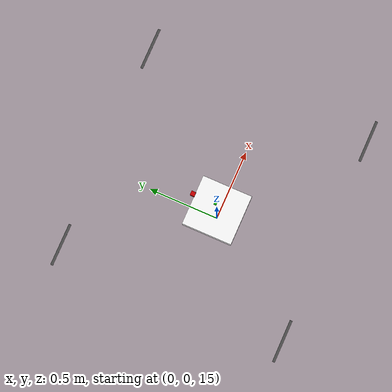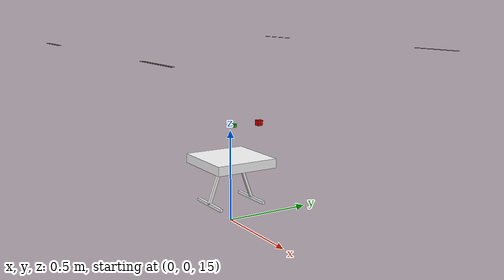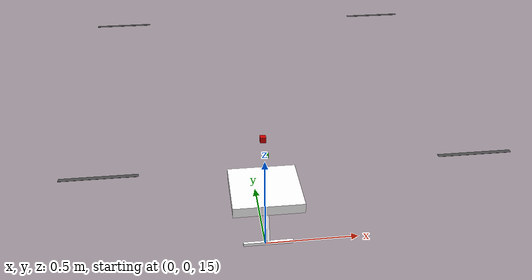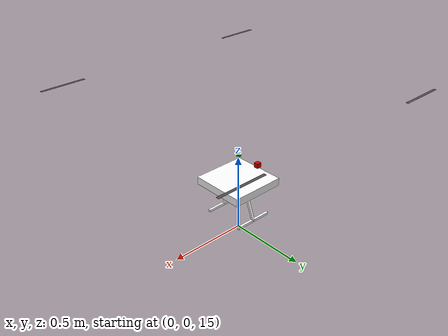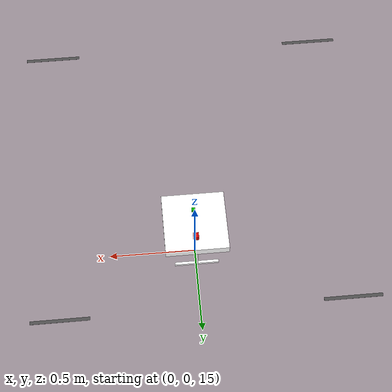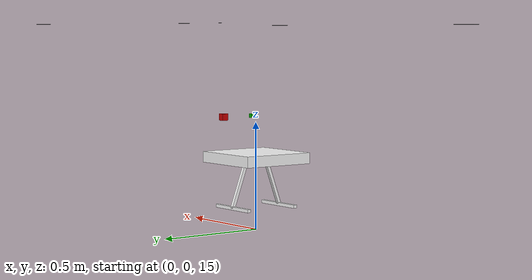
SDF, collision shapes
<?xml version='1.0' encoding='UTF-8'?>
<sdf version="1.9">
  <model name="x500_custom">
    <include merge="true">
      <uri>models://x500_base_custom</uri>
    </include>
    <plugin filename="gz-sim-multicopter-motor-model-system" name="gz::sim::systems::MulticopterMotorModel">
      <jointName>rotor_0_joint</jointName>
      <linkName>rotor_0</linkName>
      <turningDirection>cw</turningDirection>
      <timeConstantUp>0.0125</timeConstantUp>
      <timeConstantDown>0.025</timeConstantDown>
      <maxRotVelocity>357.5132</maxRotVelocity>
      <motorConstant>2.896058e-03</motorConstant>
      <momentConstant>0.046895</momentConstant>
      <commandSubTopic>command/motor_speed</commandSubTopic>
      <motorNumber>0</motorNumber>
      <rotorDragCoefficient>1.000000e-05</rotorDragCoefficient>
      <rollingMomentCoefficient>1.0e-06</rollingMomentCoefficient>
      <rotorVelocitySlowdownSim>10</rotorVelocitySlowdownSim>
      <motorType>velocity</motorType>
    </plugin>
    <plugin filename="gz-sim-multicopter-motor-model-system" name="gz::sim::systems::MulticopterMotorModel">
      <jointName>rotor_1_joint</jointName>
      <linkName>rotor_1</linkName>
      <turningDirection>cw</turningDirection>
      <timeConstantUp>0.0125</timeConstantUp>
      <timeConstantDown>0.025</timeConstantDown>
      <maxRotVelocity>357.5132</maxRotVelocity>
      <motorConstant>2.896058e-03</motorConstant>
      <momentConstant>0.046895</momentConstant>
      <commandSubTopic>command/motor_speed</commandSubTopic>
      <motorNumber>1</motorNumber>
      <rotorDragCoefficient>1.000000e-05</rotorDragCoefficient>
      <rollingMomentCoefficient>1.0e-06</rollingMomentCoefficient>
      <rotorVelocitySlowdownSim>10</rotorVelocitySlowdownSim>
      <motorType>velocity</motorType>
    </plugin>
    <plugin filename="gz-sim-multicopter-motor-model-system" name="gz::sim::systems::MulticopterMotorModel">
      <jointName>rotor_2_joint</jointName>
      <linkName>rotor_2</linkName>
      <turningDirection>ccw</turningDirection>
      <timeConstantUp>0.0125</timeConstantUp>
      <timeConstantDown>0.025</timeConstantDown>
      <maxRotVelocity>357.5132</maxRotVelocity>
      <motorConstant>2.896058e-03</motorConstant>
      <momentConstant>0.046895</momentConstant>
      <commandSubTopic>command/motor_speed</commandSubTopic>
      <motorNumber>2</motorNumber>
      <rotorDragCoefficient>1.000000e-05</rotorDragCoefficient>
      <rollingMomentCoefficient>1.0e-06</rollingMomentCoefficient>
      <rotorVelocitySlowdownSim>10</rotorVelocitySlowdownSim>
      <motorType>velocity</motorType>
    </plugin>
    <plugin filename="gz-sim-multicopter-motor-model-system" name="gz::sim::systems::MulticopterMotorModel">
      <jointName>rotor_3_joint</jointName>
      <linkName>rotor_3</linkName>
      <turningDirection>ccw</turningDirection>
      <timeConstantUp>0.0125</timeConstantUp>
      <timeConstantDown>0.025</timeConstantDown>
      <maxRotVelocity>357.5132</maxRotVelocity>
      <motorConstant>2.896058e-03</motorConstant>
      <momentConstant>0.046895</momentConstant>
      <commandSubTopic>command/motor_speed</commandSubTopic>
      <motorNumber>3</motorNumber>
      <rotorDragCoefficient>1.000000e-05</rotorDragCoefficient>
      <rollingMomentCoefficient>1.0e-06</rollingMomentCoefficient>
      <rotorVelocitySlowdownSim>10</rotorVelocitySlowdownSim>
      <motorType>velocity</motorType>
    </plugin>
  </model>
</sdf>

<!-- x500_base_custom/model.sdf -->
<sdf version="1.9">
  <model name="x500_base_custom">
    <pose>0 0 15.33 0 0 0</pose>
    <self_collide>false</self_collide>
    <static>false</static>

    <!-- === MASTER REFERENCE FRAME === -->
    <frame name="base_ref" attached_to="base_link">
      <pose>0.01 0.016 0 0 0 0</pose>
    </frame>

    <!-- === BASE LINK === -->
    <link name="base_link">
      <inertial>
        <mass>25.000</mass>
        <inertia>
          <ixx>0.02166666666666667</ixx>
          <ixy>0</ixy>
          <ixz>0</ixz>
          <iyy>0.02166666666666667</iyy>
          <iyz>0</iyz>
          <izz>0.04000000000000001</izz>
        </inertia>
      </inertial>
      <gravity>true</gravity>
      <velocity_decay>
        <linear>0.01</linear>
        <angular>0.01</angular>
      </velocity_decay>
      <enable_wind>true</enable_wind>

      <!-- Görsel artık base_ref'e göre ve pose=0 -->
      <visual name="base_link_visual">
        <pose relative_to="base_ref">0 0 0 0 0 0</pose>
        <geometry>
          <mesh>
            <scale>0.009 0.013 0.01</scale>
            <uri>model://x500_base_custom/meshes/last.dae</uri>
          </mesh>
        </geometry>
      </visual>

      <!-- Motor taban görselleri -->
      <visual name="5010_motor_base_0">
        <pose relative_to="base_ref">0.689 0.7535 0.55 0 0 -0.90</pose>
        <geometry>
          <mesh>
            <scale>0.1 0.1 0.1</scale>
            <uri>model://x500_base_custom/meshes/motorbase.dae</uri>
          </mesh>
        </geometry>
      </visual>
      <visual name="5010_motor_base_1">
        <pose relative_to="base_ref">-0.689 0.7535 0.55 0 0 0.90</pose>
        <geometry>
          <mesh>
            <scale>0.1 0.1 0.1</scale>
            <uri>model://x500_base_custom/meshes/motorbase.dae</uri>
          </mesh>
        </geometry>
      </visual>
      <visual name="5010_motor_base_2">
        <pose relative_to="base_ref">0.689 -0.7535 0.55 0 0 -2.10</pose>
        <geometry>
          <mesh>
            <scale>0.1 0.1 0.1</scale>
            <uri>model://x500_base_custom/meshes/motorbase.dae</uri>
          </mesh>
        </geometry>
      </visual>
      <visual name="5010_motor_base_3">
        <pose relative_to="base_ref">-0.689 -0.7535 0.55 0 0 -4.2</pose>
        <geometry>
          <mesh>
            <scale>0.1 0.1 0.1</scale>
            <uri>model://x500_base_custom/meshes/motorbase.dae</uri>
          </mesh>
        </geometry>
      </visual>

      <!-- Üstteki yazılar -->
      <visual name="NXP_FMUK66_FRONT">
        <pose relative_to="base_ref">0.047 .001 .043 1 0 1.57</pose>
        <cast_shadows>false</cast_shadows>
        <geometry>
          <plane>
            <normal>0 0 1</normal>
            <size>.013 .007</size>
          </plane>
        </geometry>
        <material>
          <diffuse>1.0 1.0 1.0</diffuse>
          <specular>1.0 1.0 1.0</specular>
          <pbr>
            <metal>
              <albedo_map>model://x500_base_custom/materials/textures/nxp.png</albedo_map>
            </metal>
          </pbr>
        </material>
      </visual>
      <visual name="NXP_FMUK66_TOP">
        <pose relative_to="base_ref">-0.023 0 .0515 0 0 -1.57</pose>
        <cast_shadows>false</cast_shadows>
        <geometry>
          <plane>
            <normal>0 0 1</normal>
            <size>.013 .007</size>
          </plane>
        </geometry>
        <material>
          <diffuse>1.0 1.0 1.0</diffuse>
          <specular>1.0 1.0 1.0</specular>
          <pbr>
            <metal>
              <albedo_map>model://x500_base_custom/materials/textures/nxp.png</albedo_map>
            </metal>
          </pbr>
        </material>
      </visual>
      <visual name="RDDRONE_FMUK66_TOP">
        <pose relative_to="base_ref">-.03 0 .0515 0 0 -1.57</pose>
        <cast_shadows>false</cast_shadows>
        <geometry>
          <plane>
            <normal>0 0 1</normal>
            <size>.032 .0034</size>
          </plane>
        </geometry>
        <material>
          <diffuse>1.0 1.0 1.0</diffuse>
          <specular>1.0 1.0 1.0</specular>
          <pbr>
            <metal>
              <albedo_map>model://x500_base_custom/materials/textures/rd.png</albedo_map>
            </metal>
          </pbr>
        </material>
      </visual>

      <!-- base_link çarpışmaları -->
      <collision name="base_link_collision_0">
        <pose>0 0 .007 0 0 0</pose>
        <geometry>
          <box>
            <size>0.35355339059327373 0.35355339059327373 0.05</size>
          </box>
        </geometry>
        <surface>
          <contact><ode><min_depth>0.001</min_depth><max_vel>0</max_vel></ode></contact>
          <friction><ode/></friction>
        </surface>
      </collision>
      <collision name="base_link_collision_1">
        <pose>0 -0.098 -.123 -0.35 0 0</pose>
        <geometry>
          <box>
            <size>0.015 0.015 0.21</size>
          </box>
        </geometry>
        <surface>
          <contact><ode><min_depth>0.001</min_depth><max_vel>0</max_vel></ode></contact>
          <friction><ode/></friction>
        </surface>
      </collision>
      <collision name="base_link_collision_2">
        <pose>0 0.098 -.123 0.35 0 0</pose>
        <geometry>
          <box>
            <size>0.015 0.015 0.21</size>
          </box>
        </geometry>
        <surface>
          <contact><ode><min_depth>0.001</min_depth><max_vel>0</max_vel></ode></contact>
          <friction><ode/></friction>
        </surface>
      </collision>
      <collision name="base_link_collision_3">
        <pose>0 -0.132 -.2195 0 0 0</pose>
        <geometry>
          <box>
            <size>0.25 0.015 0.015</size>
          </box>
        </geometry>
        <surface>
          <contact><ode><min_depth>0.001</min_depth><max_vel>0</max_vel></ode></contact>
          <friction><ode/></friction>
        </surface>
      </collision>
      <collision name="base_link_collision_4">
        <pose>0 0.132 -.2195 0 0 0</pose>
        <geometry>
          <box>
            <size>0.25 0.015 0.015</size>
          </box>
        </geometry>
        <surface>
          <contact><ode><min_depth>0.001</min_depth><max_vel>0</max_vel></ode></contact>
          <friction><ode/></friction>
        </surface>
      </collision>

      <!-- Sensörler -->
      <sensor name="air_pressure_sensor" type="air_pressure">
        <gz_frame_id>base_link</gz_frame_id>
        <always_on>1</always_on>
        <update_rate>50</update_rate>
        <air_pressure>
          <pressure>
            <noise type="gaussian">
              <mean>0</mean>
              <stddev>3</stddev>
            </noise>
          </pressure>
        </air_pressure>
      </sensor>

      <sensor name="magnetometer_sensor" type="magnetometer">
        <gz_frame_id>base_link</gz_frame_id>
        <always_on>1</always_on>
        <update_rate>100</update_rate>
        <magnetometer>
          <x><noise type="gaussian"><stddev>0.0001</stddev></noise></x>
          <y><noise type="gaussian"><stddev>0.0001</stddev></noise></y>
          <z><noise type="gaussian"><stddev>0.0001</stddev></noise></z>
        </magnetometer>
      </sensor>

      <sensor name="imu_sensor" type="imu">
        <gz_frame_id>base_link</gz_frame_id>
        <always_on>1</always_on>
        <update_rate>250</update_rate>
        <imu>
          <angular_velocity>
            <x><noise type="gaussian"><mean>0.0</mean><stddev>0.0008726646</stddev></noise></x>
            <y><noise type="gaussian"><mean>0.0</mean><stddev>0.0008726646</stddev></noise></y>
            <z><noise type="gaussian"><mean>0.0</mean><stddev>0.0008726646</stddev></noise></z>
          </angular_velocity>
          <linear_acceleration>
            <x><noise type="gaussian"><mean>0.0</mean><stddev>0.00637</stddev></noise></x>
            <y><noise type="gaussian"><mean>0.0</mean><stddev>0.00637</stddev></noise></y>
            <z><noise type="gaussian"><mean>0.0</mean><stddev>0.00686</stddev></noise></z>
          </linear_acceleration>
        </imu>
      </sensor>

      <sensor name="navsat_sensor" type="navsat">
        <gz_frame_id>base_link</gz_frame_id>
        <always_on>1</always_on>
        <update_rate>30</update_rate>
      </sensor>
    </link>

    <!-- === ROTORLAR ve EKLEMLER === -->
    <link name="rotor_0">
      <gravity>true</gravity>
      <self_collide>false</self_collide>
      <velocity_decay>
        <linear>0.005</linear>
        <angular>0.01</angular>
      </velocity_decay>
      <enable_wind>true</enable_wind>
      <pose relative_to="base_ref">0.689 -0.7535 0.62 0 0 0</pose>
      <inertial>
        <mass>2.800</mass>
        <inertia>
          <ixx>4.294957e-02</ixx>
          <iyy>4.294957e-02</iyy>
          <izz>8.473248e-02</izz>
        </inertia>
      </inertial>
      <visual name="rotor_0_visual">
        <pose>0 0 0 4.71238898 0 0</pose>
        <geometry>
          <mesh>
            <scale>0.8461538461538461 0.8461538461538461 0.8461538461538461</scale>
            <uri>model://x500_base_custom/meshes/4314_CCW.stl</uri>
          </mesh>
        </geometry>
        <material>
          <script>
            <name>Gazebo/DarkGrey</name>
            <uri>file://media/materials/scripts/gazebo.material</uri>
          </script>
        </material>
      </visual>
      <visual name="rotor_0_visual_motor_bell">
        <pose>0 0 -.032 0 0 0</pose>
        <geometry>
          <mesh>
            <scale>0.01 0.01 0.01</scale>
            <uri>model://x500_base_custom/meshes/Untitled.dae</uri>
          </mesh>
        </geometry>
        <material>
          <script>
            <name>Gazebo/DarkGrey</name>
            <uri>file://media/materials/scripts/gazebo.material</uri>
          </script>
        </material>
      </visual>
      <collision name="rotor_0_collision">
        <pose>0 0 0 0 0 0 </pose>
        <geometry>
          <box>
            <size>0.2792307692307692 0.016923076923076923 0.0008461538461538462</size>
          </box>
        </geometry>
        <surface>
          <contact><ode><min_depth>0.001</min_depth><max_vel>0</max_vel></ode></contact>
          <friction><ode/></friction>
        </surface>
      </collision>
    </link>
    <joint name="rotor_0_joint" type="revolute">
      <parent>base_link</parent>
      <child>rotor_0</child>
      <axis>
        <xyz>0 0 1</xyz>
        <limit><lower>-1e+16</lower><upper>1e+16</upper></limit>
        <dynamics><spring_reference>0</spring_reference><spring_stiffness>0</spring_stiffness></dynamics>
      </axis>
    </joint>

    <link name="rotor_1">
      <gravity>true</gravity>
      <self_collide>false</self_collide>
      <velocity_decay>
        <linear>0.005</linear>
        <angular>0.01</angular>
      </velocity_decay>
      <enable_wind>true</enable_wind>
      <pose relative_to="base_ref">-0.689 0.7535174 0.62 0 0 0</pose>
      <inertial>
        <mass>2.800</mass>
        <inertia>
          <ixx>4.294957e-02</ixx>
          <iyy>4.294957e-02</iyy>
          <izz>8.473248e-02</izz>
        </inertia>
      </inertial>
      <visual name="rotor_1_visual">
        <pose>0 0 0 4.71238898 0 0</pose>
        <geometry>
          <mesh>
            <scale>0.8461538461538461 0.8461538461538461 0.8461538461538461</scale>
            <uri>model://x500_base_custom/meshes/4314_CCW.stl</uri>
          </mesh>
        </geometry>
        <material>
          <script>
            <name>Gazebo/DarkGrey</name>
            <uri>file://media/materials/scripts/gazebo.material</uri>
          </script>
        </material>
      </visual>
      <visual name="rotor_1_visual_motor_top">
        <pose>0 0 -.032 0 0 0</pose>
        <geometry>
          <mesh>
            <scale>0.01 0.01 0.01</scale>
            <uri>model://x500_base_custom/meshes/Untitled.dae</uri>
          </mesh>
        </geometry>
        <material>
          <script>
            <name>Gazebo/DarkGrey</name>
            <uri>file://media/materials/scripts/gazebo.material</uri>
          </script>
        </material>
      </visual>
      <collision name="rotor_1_collision">
        <pose>0 0 0 0 0 0 </pose>
        <geometry>
          <box>
            <size>0.2792307692307692 0.016923076923076923 0.0008461538461538462</size>
          </box>
        </geometry>
        <surface>
          <contact><ode/><ode/></contact>
          <friction><ode/></friction>
        </surface>
      </collision>
    </link>
    <joint name="rotor_1_joint" type="revolute">
      <parent>base_link</parent>
      <child>rotor_1</child>
      <axis>
        <xyz>0 0 1</xyz>
        <limit><lower>-1e+16</lower><upper>1e+16</upper></limit>
        <dynamics><spring_reference>0</spring_reference><spring_stiffness>0</spring_stiffness></dynamics>
      </axis>
    </joint>

    <link name="rotor_2">
      <gravity>true</gravity>
      <self_collide>false</self_collide>
      <velocity_decay>
        <linear>0.005</linear>
        <angular>0.01</angular>
      </velocity_decay>
      <enable_wind>true</enable_wind>
      <pose relative_to="base_ref">0.689 0.7535 0.62 0 0 0</pose>
      <inertial>
        <mass>2.800</mass>
        <inertia>
          <ixx>4.294957e-02</ixx>
          <iyy>4.294957e-02</iyy>
          <izz>8.473248e-02</izz>
        </inertia>
      </inertial>
      <visual name="rotor_2_visual">
        <pose>0 0 0 4.71238898 0 0</pose>
        <geometry>
          <mesh>
            <scale>0.8461538461538461 0.8461538461538461 0.8461538461538461</scale>
            <uri>model://x500_base_custom/meshes/4314_CW.stl</uri>
          </mesh>
        </geometry>
        <material>
          <script>
            <name>Gazebo/DarkGrey</name>
            <uri>file://media/materials/scripts/gazebo.material</uri>
          </script>
        </material>
      </visual>
      <visual name="rotor_2_visual_motor_top">
        <pose>0 0 -.032 0 0 0</pose>
        <geometry>
          <mesh>
            <scale>0.01 0.01 0.01</scale>
            <uri>model://x500_base_custom/meshes/Untitled.dae</uri>
          </mesh>
        </geometry>
        <material>
          <script>
            <name>Gazebo/DarkGrey</name>
            <uri>file://media/materials/scripts/gazebo.material</uri>
          </script>
        </material>
      </visual>
      <collision name="rotor_2_collision">
        <pose>0 0 0 0 0 0 </pose>
        <geometry>
          <box>
            <size>0.2792307692307692 0.016923076923076923 0.0008461538461538462</size>
          </box>
        </geometry>
        <surface>
          <contact><ode/><ode/></contact>
          <friction><ode/></friction>
        </surface>
      </collision>
    </link>
    <joint name="rotor_2_joint" type="revolute">
      <parent>base_link</parent>
      <child>rotor_2</child>
      <axis>
        <xyz>0 0 1</xyz>
        <limit><lower>-1e+16</lower><upper>1e+16</upper></limit>
        <dynamics><spring_reference>0</spring_reference><spring_stiffness>0</spring_stiffness></dynamics>
      </axis>
    </joint>

    <link name="rotor_3">
      <gravity>true</gravity>
      <self_collide>false</self_collide>
      <velocity_decay>
        <linear>0.005</linear>
        <angular>0.01</angular>
      </velocity_decay>
      <enable_wind>true</enable_wind>
      <pose relative_to="base_ref">-0.689 -0.7535 0.62 0 0 0</pose>
      <inertial>
        <mass>2.800</mass>
        <inertia>
          <ixx>4.294957e-02</ixx>
          <iyy>4.294957e-02</iyy>
          <izz>8.473248e-02</izz>
        </inertia>
      </inertial>
      <visual name="rotor_3_visual">
        <pose>0 0 0 4.71238898 0 0</pose>
        <geometry>
          <mesh>
            <scale>0.8461538461538461 0.8461538461538461 0.8461538461538461</scale>
            <uri>model://x500_base_custom/meshes/4314_CW.stl</uri>
          </mesh>
        </geometry>
        <material>
          <script>
            <name>Gazebo/DarkGrey</name>
            <uri>file://media/materials/scripts/gazebo.material</uri>
          </script>
        </material>
      </visual>
      <visual name="rotor_3_visual_motor_top">
        <pose>0 0 -.032 0 0 0</pose>
        <geometry>
          <mesh>
            <scale>0.01 0.01 0.01</scale>
            <uri>model://x500_base_custom/meshes/Untitled.dae</uri>
          </mesh>
        </geometry>
        <material>
          <script>
            <name>Gazebo/DarkGrey</name>
            <uri>file://media/materials/scripts/gazebo.material</uri>
          </script>
        </material>
      </visual>
      <collision name="rotor_3_collision">
        <pose>0 0 0 0 0 0 </pose>
        <geometry>
          <box>
            <size>0.2792307692307692 0.016923076923076923 0.0008461538461538462</size>
          </box>
        </geometry>
        <surface>
          <contact><ode/><ode/></contact>
          <friction><ode/></friction>
        </surface>
      </collision>
    </link>
    <joint name="rotor_3_joint" type="revolute">
      <parent>base_link</parent>
      <child>rotor_3</child>
      <axis>
        <xyz>0 0 1</xyz>
        <limit><lower>-1e+16</lower><upper>1e+16</upper></limit>
        <dynamics><spring_reference>0</spring_reference><spring_stiffness>0</spring_stiffness></dynamics>
      </axis>
    </joint>

    <!-- === GERÇEKÇİ YÜK KAYMASI === -->
    <link name="payload_carriage">
      <self_collide>false</self_collide>
      <pose relative_to="base_ref">0 0 0.20 0 0 0</pose>
      <inertial>
        <mass>0.001</mass>
        <inertia>
          <ixx>1e-6</ixx><iyy>1e-6</iyy><izz>1e-6</izz>
          <ixy>0</ixy><ixz>0</ixz><iyz>0</iyz>
        </inertia>
      </inertial>
      <velocity_decay>
        <linear>0.005</linear>
        <angular>0.005</angular>
      </velocity_decay>
      <enable_wind>true</enable_wind>
      <visual name="carriage_vis">
        <geometry><box><size>0.03 0.03 0.03</size></box></geometry>
        <material><ambient>0 1 0 1</ambient><diffuse>0 0.7 0 1</diffuse></material>
      </visual>
      <collision name="carriage_col">
        <geometry><box><size>0.018 0.018 0.018</size></box></geometry>
        <max_contacts>0</max_contacts>
        <surface><contact><collide_bitmask>0x0000</collide_bitmask></contact></surface>
      </collision>
    </link>

    <link name="payload_y">
      <self_collide>false</self_collide>
      <pose relative_to="base_ref">0 0 0.20 0 0 0</pose>
      <inertial>
        <mass>0.001</mass>
        <inertia>
          <ixx>1e-6</ixx><iyy>1e-6</iyy><izz>1e-6</izz>
          <ixy>0</ixy><ixz>0</ixz><iyz>0</iyz>
        </inertia>
      </inertial>
      <velocity_decay>
        <linear>0.005</linear>
        <angular>0.005</angular>
      </velocity_decay>
      <enable_wind>true</enable_wind>
      <visual name="y_vis">
        <geometry><box><size>0.03 0.03 0.03</size></box></geometry>
        <material><ambient>0 0 1 1</ambient><diffuse>0 0 0.8 1</diffuse></material>
      </visual>
      <collision name="y_col">
        <geometry><box><size>0.018 0.018 0.018</size></box></geometry>
        <max_contacts>0</max_contacts>
        <surface><contact><collide_bitmask>0x0000</collide_bitmask></contact></surface>
      </collision>
    </link>

    <link name="payload_mass">
      <self_collide>false</self_collide>
      <pose relative_to="base_ref">0 0.16 0.20 0 0 0</pose>
      <inertial>
        <mass>3</mass>
        <inertia>
          <ixx>0.0146</ixx><iyy>0.0146</iyy><izz>0.0146</izz>
          <ixy>0</ixy><ixz>0</ixz><iyz>0</iyz>
        </inertia>
      </inertial>
      <velocity_decay>
        <linear>0.002</linear>
        <angular>0.002</angular>
      </velocity_decay>
      <enable_wind>true</enable_wind>
      <visual name="mass_vis">
        <geometry><box><size>0.05 0.05 0.05</size></box></geometry>
        <material><ambient>1 0 0 1</ambient><diffuse>0.8 0 0 1</diffuse></material>
      </visual>
      <collision name="mass_col">
        <geometry><box><size>0.03 0.03 0.03</size></box></geometry>
        <max_contacts>0</max_contacts>
        <surface><contact><collide_bitmask>0x0000</collide_bitmask></contact></surface>
      </collision>
    </link>

    <joint name="payload_slide_x" type="prismatic">
      <parent>base_link</parent>
      <child>payload_carriage</child>
      <pose>0 0 0 0 0 0</pose>
      <axis>
        <xyz>1 0 0</xyz>
        <use_parent_model_frame>true</use_parent_model_frame>
        <limit><lower>-0.1</lower><upper>0.1</upper><effort>200</effort><velocity>1.0</velocity></limit>
        <dynamics><damping>0.1</damping><friction>0.0</friction></dynamics>
      </axis>
    </joint>

    <joint name="payload_slide_y" type="prismatic">
      <parent>payload_carriage</parent>
      <child>payload_y</child>
      <pose>0 0 0 0 0 0</pose>
      <axis>
        <xyz>0 1 0</xyz>
        <use_parent_model_frame>true</use_parent_model_frame>
        <limit><lower>-0.1</lower><upper>0.1</upper><effort>200</effort><velocity>1.0</velocity></limit>
        <dynamics><damping>0.1</damping><friction>0.0</friction></dynamics>
      </axis>
    </joint>

    <joint name="payload_slide_z" type="prismatic">
      <parent>payload_y</parent>
      <child>payload_mass</child>
      <pose>0 0 0 0 0 0</pose>
      <axis>
        <xyz>0 0 1</xyz>
        <use_parent_model_frame>true</use_parent_model_frame>
        <limit><lower>-0.1</lower><upper>0.1</upper><effort>1000</effort><velocity>2.0</velocity></limit>
        <dynamics><damping>0.1</damping><friction>0.0</friction></dynamics>
      </axis>
    </joint>

    <plugin filename="gz-sim-joint-position-controller-system"
            name="gz::sim::systems::JointPositionController">
      <joint_name>payload_slide_x</joint_name>
      <p_gain>400</p_gain><i_gain>0</i_gain><d_gain>30</d_gain>
    </plugin>

    <plugin filename="gz-sim-joint-position-controller-system"
            name="gz::sim::systems::JointPositionController">
      <joint_name>payload_slide_y</joint_name>
      <p_gain>400</p_gain><i_gain>0</i_gain><d_gain>30</d_gain>
    </plugin>

    <plugin filename="gz-sim-joint-position-controller-system"
            name="gz::sim::systems::JointPositionController">
      <joint_name>payload_slide_z</joint_name>
      <p_gain>400</p_gain><i_gain>120</i_gain><d_gain>30</d_gain>
      <cmd_max>2500</cmd_max>
      <limit><lower>-1</lower><upper>1</upper><effort>1000</effort><velocity>3.0</velocity></limit>
    </plugin>

  </model>
</sdf>
